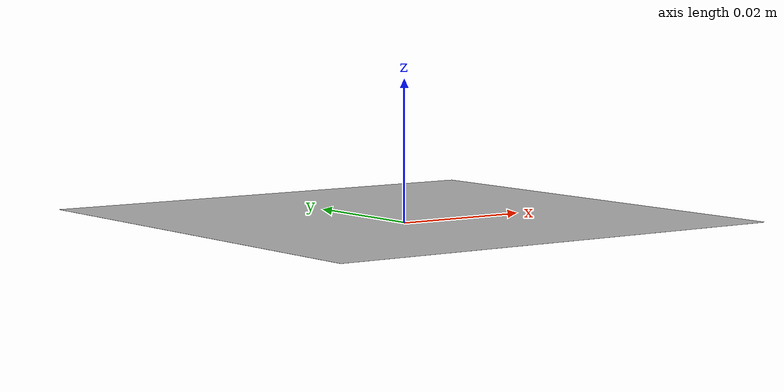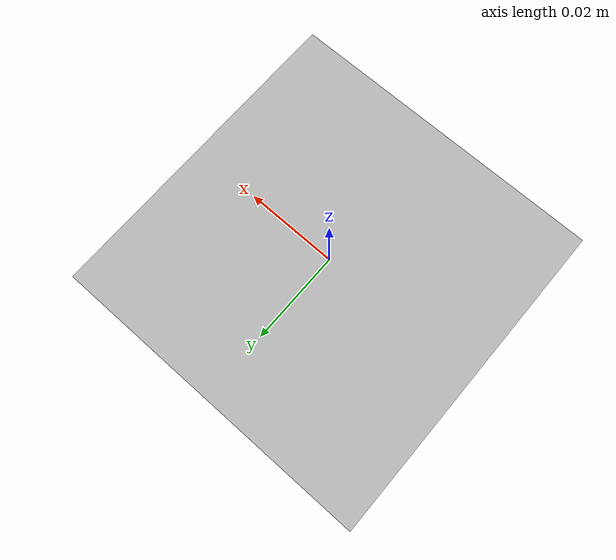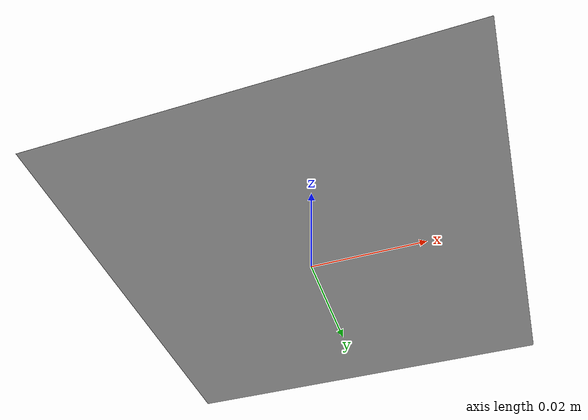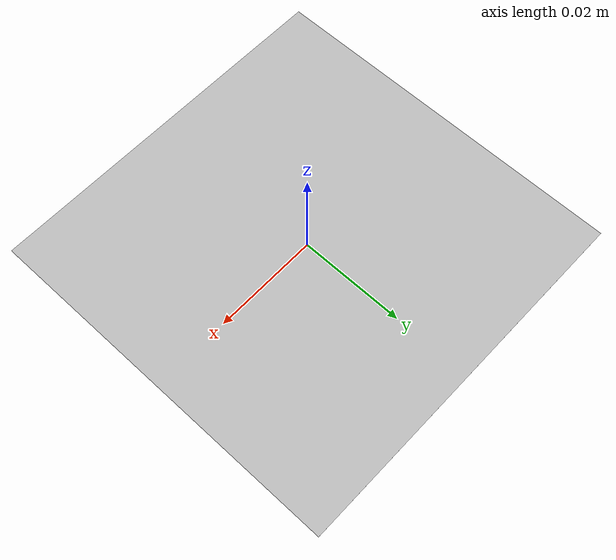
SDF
<?xml version="1.0"?>
<sdf version="1.5">
    <model name="qr_shelf_B">
        <static>true</static>
        <link name="qr_shelf_B_link">
            <pose>0 0 1e-3 0 0 1.5707963267948966</pose>
            <visual name="visual_qr_shelf_B">
                <cast_shadows>false</cast_shadows>
                <geometry><box><size>0.07 0.07 0.00001</size></box></geometry>
                <material>
                    <script>
                        <uri>model://qr_shelf_B/materials/scripts</uri>
                        <uri>model://qr_shelf_B/materials/textures</uri>
                        <name>qr_shelf_B/qr_shelf_B</name>
                    </script>
                </material>
            </visual>
        </link>
    </model>
</sdf>
